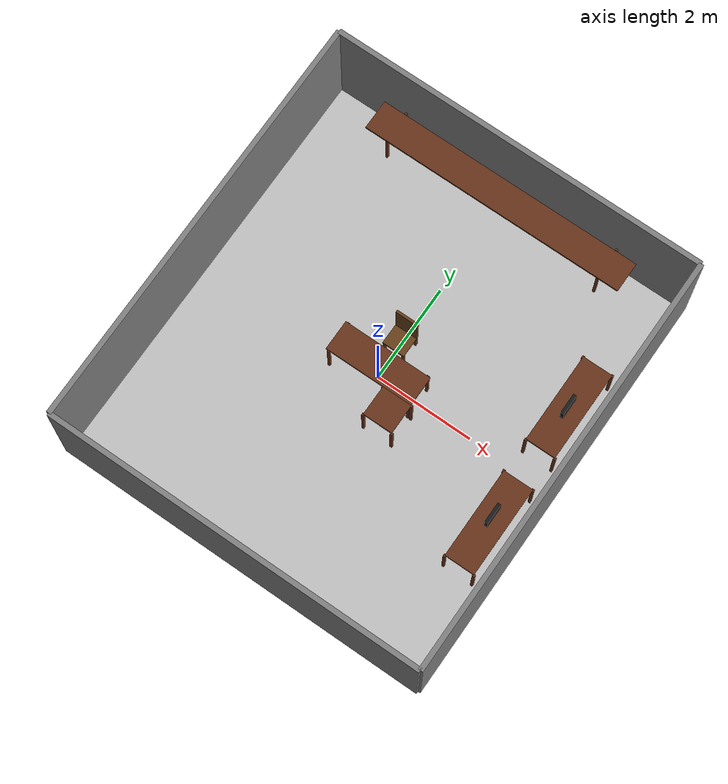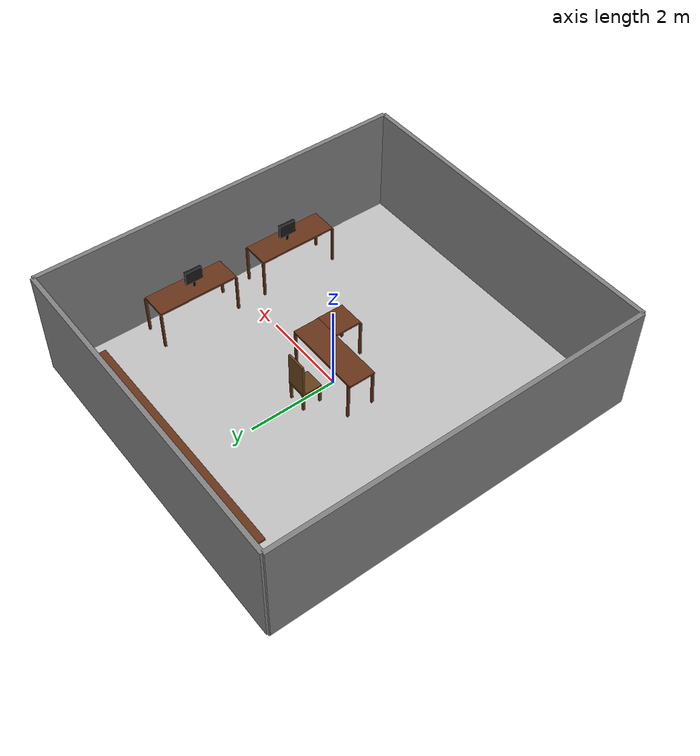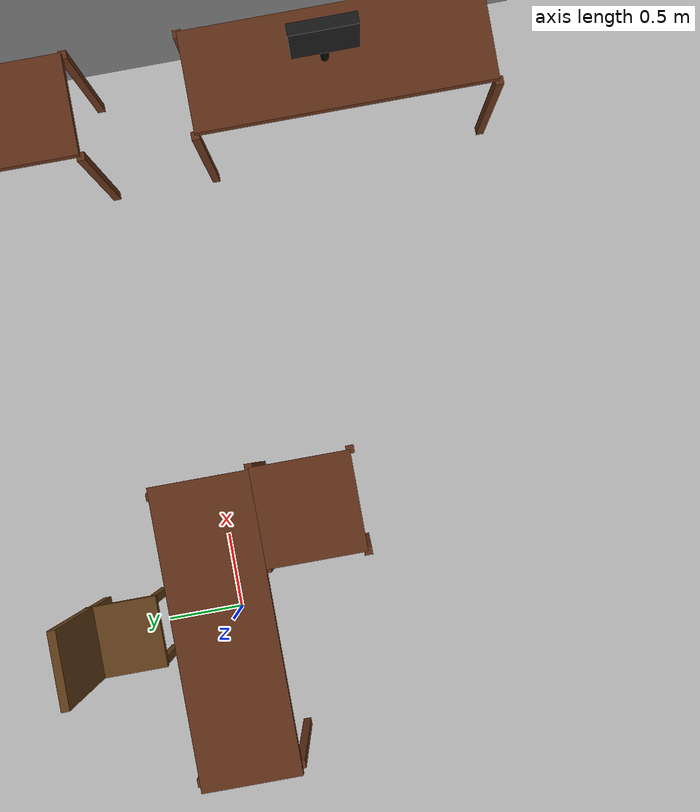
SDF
<?xml version="1.0" ?>
<sdf version="1.7">
  <world name="room_world">

    <!-- Floor -->
    <model name="floor">
      <static>true</static>
      <link name="floor_link">
        <pose>0 0 -0.05 0 0 0</pose>
        <collision name="floor_collision">
          <geometry>
            <box><size>7.62 8.53 0.1</size></box>
          </geometry>
        </collision>
        <visual name="floor_visual">
          <geometry>
            <box><size>7.62 8.53 0.1</size></box>
          </geometry>
          <material>
            <ambient>0.75 0.75 0.75 1</ambient>
            <diffuse>0.75 0.75 0.75 1</diffuse>
          </material>
        </visual>
      </link>
    </model>

    <!-- Wall 1 -->
    <model name="wall1">
      <static>true</static>
      <link name="wall1_link">
        <pose>-3.81 0 1.25 0 0 0</pose>
        <collision name="wall1_collision">
          <geometry>
            <box><size>0.1 8.53 2.5</size></box>
          </geometry>
        </collision>
        <visual name="wall1_visual">
          <geometry>
            <box><size>0.1 8.53 2.5</size></box>
          </geometry>
          <material>
            <ambient>0.5 0.5 0.5 1</ambient>
            <diffuse>0.5 0.5 0.5 1</diffuse>
          </material>
        </visual>
      </link>
    </model>

    <!-- Wall 2 -->
    <model name="wall2">
      <static>true</static>
      <link name="wall2_link">
        <pose>3.81 0 1.25 0 0 0</pose>
        <collision name="wall2_collision">
          <geometry>
            <box><size>0.1 8.53 2.5</size></box>
          </geometry>
        </collision>
        <visual name="wall2_visual">
          <geometry>
            <box><size>0.1 8.53 2.5</size></box>
          </geometry>
          <material>
            <ambient>0.5 0.5 0.5 1</ambient>
            <diffuse>0.5 0.5 0.5 1</diffuse>
          </material>
        </visual>
      </link>
    </model>

    <!-- Wall 3 -->
    <model name="wall3">
      <static>true</static>
      <link name="wall3_link">
        <pose>0 -4.265 1.25 0 0 0</pose>
        <collision name="wall3_collision">
          <geometry>
            <box><size>7.62 0.1 2.5</size></box>
          </geometry>
        </collision>
        <visual name="wall3_visual">
          <geometry>
            <box><size>7.62 0.1 2.5</size></box>
          </geometry>
          <material>
            <ambient>0.5 0.5 0.5 1</ambient>
            <diffuse>0.5 0.5 0.5 1</diffuse>
          </material>
        </visual>
      </link>
    </model>

    <!-- Wall 4 -->
    <model name="wall4">
      <static>true</static>
      <link name="wall4_link">
        <pose>0 4.265 1.25 0 0 0</pose>
        <collision name="wall4_collision">
          <geometry>
            <box><size>7.62 0.1 2.5</size></box>
          </geometry>
        </collision>
        <visual name="wall4_visual">
          <geometry>
            <box><size>7.62 0.1 2.5</size></box>
          </geometry>
          <material>
            <ambient>0.5 0.5 0.5 1</ambient>
            <diffuse>0.5 0.5 0.5 1</diffuse>
          </material>
        </visual>
      </link>
    </model>

    <!-- Table (brown): 6ft x 2ft x 3ft -->
    <model name="table">
      <static>true</static>

      <!-- Tabletop -->
      <link name="table_top_link">
        <pose>0 0 0.91 0 0 0</pose>
        <collision name="table_top_collision">
          <geometry>
            <box><size>1.83 0.61 0.05</size></box>
          </geometry>
        </collision>
        <visual name="table_top_visual">
          <geometry>
            <box><size>1.83 0.61 0.05</size></box>
          </geometry>
          <material>
            <ambient>0.4 0.2 0.1 1</ambient>
            <diffuse>0.4 0.2 0.1 1</diffuse>
          </material>
        </visual>
      </link>

      <!-- Table Legs (brown) -->
      <link name="leg1">
        <pose>-0.86 -0.30 0.45 0 0 0</pose>
        <collision name="leg1_collision">
          <geometry><box><size>0.05 0.05 0.9</size></box></geometry>
        </collision>
        <visual name="leg1_visual">
          <geometry><box><size>0.05 0.05 0.9</size></box></geometry>
          <material>
            <ambient>0.4 0.2 0.1 1</ambient>
            <diffuse>0.4 0.2 0.1 1</diffuse>
          </material>
        </visual>
      </link>

      <link name="leg2">
        <pose>0.86 -0.30 0.45 0 0 0</pose>
        <collision name="leg2_collision">
          <geometry><box><size>0.05 0.05 0.9</size></box></geometry>
        </collision>
        <visual name="leg2_visual">
          <geometry><box><size>0.05 0.05 0.9</size></box></geometry>
          <material>
            <ambient>0.4 0.2 0.1 1</ambient>
            <diffuse>0.4 0.2 0.1 1</diffuse>
          </material>
        </visual>
      </link>

      <link name="leg3">
        <pose>-0.86 0.30 0.45 0 0 0</pose>
        <collision name="leg3_collision">
          <geometry><box><size>0.05 0.05 0.9</size></box></geometry>
        </collision>
        <visual name="leg3_visual">
          <geometry><box><size>0.05 0.05 0.9</size></box></geometry>
          <material>
            <ambient>0.4 0.2 0.1 1</ambient>
            <diffuse>0.4 0.2 0.1 1</diffuse>
          </material>
        </visual>
      </link>

      <link name="leg4">
        <pose>0.86 0.30 0.45 0 0 0</pose>
        <collision name="leg4_collision">
          <geometry><box><size>0.05 0.05 0.9</size></box></geometry>
        </collision>
        <visual name="leg4_visual">
          <geometry><box><size>0.05 0.05 0.9</size></box></geometry>
          <material>
            <ambient>0.4 0.2 0.1 1</ambient>
            <diffuse>0.4 0.2 0.1 1</diffuse>
          </material>
        </visual>
      </link>

    </model>

    <!-- Square Table Extension for L-shape -->
    <model name="table2">
      <static>true</static>

    <!-- Tabletop -->
      <link name="table_top_link">
        <pose>0.62 -0.61 0.91 0 0 0</pose>
        <collision name="table_top_collision">
          <geometry>
            <box><size>0.61 0.61 0.05</size></box>
          </geometry>
        </collision>
        <visual name="table_top_visual">
          <geometry>
            <box><size>0.61 0.61 0.05</size></box>
          </geometry>
          <material>
            <ambient>0.4 0.2 0.1 1</ambient>
            <diffuse>0.4 0.2 0.1 1</diffuse>
          </material>
        </visual>
      </link>

      <!-- Table Legs -->
      <link name="leg1">
        <pose>0.315 -0.915 0.45 0 0 0</pose>
        <collision name="leg1_collision">
          <geometry><box><size>0.05 0.05 0.9</size></box></geometry>
        </collision>
        <visual name="leg1_visual">
          <geometry><box><size>0.05 0.05 0.9</size></box></geometry>
          <material>
            <ambient>0.4 0.2 0.1 1</ambient>
            <diffuse>0.4 0.2 0.1 1</diffuse>
          </material>
        </visual>
      </link>

      <link name="leg2">
        <pose>0.925 -0.915 0.45 0 0 0</pose>
        <collision name="leg2_collision">
          <geometry><box><size>0.05 0.05 0.9</size></box></geometry>
        </collision>
        <visual name="leg2_visual">
          <geometry><box><size>0.05 0.05 0.9</size></box></geometry>
          <material>
            <ambient>0.4 0.2 0.1 1</ambient>
            <diffuse>0.4 0.2 0.1 1</diffuse>
          </material>
        </visual>
      </link>

      <link name="leg3">
        <pose>0.315 -0.305 0.45 0 0 0</pose>
        <collision name="leg3_collision">
          <geometry><box><size>0.05 0.05 0.9</size></box></geometry>
        </collision>
        <visual name="leg3_visual">
          <geometry><box><size>0.05 0.05 0.9</size></box></geometry>
          <material>
            <ambient>0.4 0.2 0.1 1</ambient>
            <diffuse>0.4 0.2 0.1 1</diffuse>
          </material>
        </visual>
      </link>

      <link name="leg4">
        <pose>0.925 -0.305 0.45 0 0 0</pose>
        <collision name="leg4_collision">
          <geometry><box><size>0.05 0.05 0.9</size></box></geometry>
        </collision>
        <visual name="leg4_visual">
          <geometry><box><size>0.05 0.05 0.9</size></box></geometry>
          <material>
            <ambient>0.4 0.2 0.1 1</ambient>
            <diffuse>0.4 0.2 0.1 1</diffuse>
          </material>
        </visual>
      </link>

    </model>

    <!-- looonnngg table -->
    <model name="table_left_triple">
      <static>true</static>

      <!-- Tabletop -->
      <link name="table_left_triple_top">
        <pose>0 3.85 0.91 0 0 0</pose>
        <collision name="table_left_triple_top_collision">
          <geometry><box><size>5.49 0.61 0.05</size></box></geometry>
        </collision>
        <visual name="table_left_triple_top_visual">
          <geometry><box><size>5.49 0.61 0.05</size></box></geometry>
          <material>
            <ambient>0.4 0.2 0.1 1</ambient>
            <diffuse>0.4 0.2 0.1 1</diffuse>
          </material>
        </visual>
      </link>

      <!-- Table Legs -->
      <link name="table_left_triple_leg1">
        <pose>-2.3 4.2 0.45 0 0 0</pose> <!-- Adjusted to the left -->
        <collision name="table_left_triple_leg1_collision">
          <geometry><box><size>0.05 0.05 0.9</size></box></geometry>
        </collision>
        <visual name="table_left_triple_leg1_visual">
          <geometry><box><size>0.05 0.05 0.9</size></box></geometry>
          <material>
            <ambient>0.4 0.2 0.1 1</ambient>
            <diffuse>0.4 0.2 0.1 1</diffuse>
          </material>
        </visual>
      </link>

      <link name="table_left_triple_leg2">
        <pose>-2.3 3.6 0.45 0 0 0</pose> <!-- Adjusted to the left -->
        <collision name="table_left_triple_leg2_collision">
          <geometry><box><size>0.05 0.05 0.9</size></box></geometry>
        </collision>
        <visual name="table_left_triple_leg2_visual">
          <geometry><box><size>0.05 0.05 0.9</size></box></geometry>
          <material>
            <ambient>0.4 0.2 0.1 1</ambient>
            <diffuse>0.4 0.2 0.1 1</diffuse>
          </material>
        </visual>
      </link>

      <link name="table_left_triple_leg3">
        <pose>2.3 4.2 0.45 0 0 0</pose> <!-- Adjusted to the left -->
        <collision name="table_left_triple_leg3_collision">
          <geometry><box><size>0.05 0.05 0.9</size></box></geometry>
        </collision>
        <visual name="table_left_triple_leg3_visual">
          <geometry><box><size>0.05 0.05 0.9</size></box></geometry>
          <material>
            <ambient>0.4 0.2 0.1 1</ambient>
            <diffuse>0.4 0.2 0.1 1</diffuse>
          </material>
        </visual>
      </link>

      <link name="table_left_triple_leg4">
        <pose>2.3 3.6 0.45 0 0 0</pose> <!-- Adjusted to the left -->
        <collision name="table_left_triple_leg4_collision">
          <geometry><box><size>0.05 0.05 0.9</size></box></geometry>
        </collision>
        <visual name="table_left_triple_leg4_visual">
          <geometry><box><size>0.05 0.05 0.9</size></box></geometry>
          <material>
            <ambient>0.4 0.2 0.1 1</ambient>
            <diffuse>0.4 0.2 0.1 1</diffuse>
          </material>
        </visual>
      </link>
    </model>

    <!-- Chair on the left side of the table -->
    <model name="chair1">
    <!-- Chair placed on the left side of the table, rotated to face the tabl-->
      <pose>0 0.7 0 0 0 3.1416</pose>

      <static>true</static>
      <link name="chair_link">

        <!-- Seat -->
        <visual name="seat_visual">
          <pose>0 0 0.45 0 0 0</pose>
          <geometry>
            <box><size>0.46 0.46 0.05</size></box>
          </geometry>
          <material>
            <ambient>0.4 0.25 0.1 1</ambient>
            <diffuse>0.4 0.25 0.1 1</diffuse>
          </material>
        </visual>
        <collision name="seat_collision">
          <pose>0 0 0.45 0 0 0</pose>
          <geometry>
            <box><size>0.46 0.46 0.05</size></box>
          </geometry>
        </collision>

        <!-- Backrest -->
        <visual name="backrest_visual">
          <pose>0 -0.2 0.85 0 0 0</pose>
          <geometry>
            <box><size>0.46 0.05 0.8</size></box>
          </geometry>
          <material>
            <ambient>0.4 0.25 0.1 1</ambient>
            <diffuse>0.4 0.25 0.1 1</diffuse>
          </material>
        </visual>
        <collision name="backrest_collision">
          <pose>0 -0.2 0.85 0 0 0</pose>
          <geometry>
            <box><size>0.46 0.05 0.8</size></box>
          </geometry>
        </collision>

        <!-- Legs -->
        <!-- Front Left -->
        <visual name="leg_fl_visual">
          <pose>0.2 0.2 0.225 0 0 0</pose>
          <geometry>
            <box><size>0.05 0.05 0.45</size></box>
          </geometry>
          <material>
            <ambient>0.4 0.25 0.1 1</ambient>
            <diffuse>0.4 0.25 0.1 1</diffuse>
          </material>
        </visual>
        <collision name="leg_fl_collision">
          <pose>0.2 0.2 0.225 0 0 0</pose>
          <geometry>
            <box><size>0.05 0.05 0.45</size></box>
          </geometry>
        </collision>

        <!-- Front Right -->
        <visual name="leg_fr_visual">
          <pose>-0.2 0.2 0.225 0 0 0</pose>
          <geometry>
            <box><size>0.05 0.05 0.45</size></box>
          </geometry>
          <material>
            <ambient>0.4 0.25 0.1 1</ambient>
            <diffuse>0.4 0.25 0.1 1</diffuse>
          </material>
        </visual>
        <collision name="leg_fr_collision">
          <pose>-0.2 0.2 0.225 0 0 0</pose>
          <geometry>
            <box><size>0.05 0.05 0.45</size></box>
          </geometry>
        </collision>

        <!-- Back Left -->
        <visual name="leg_bl_visual">
          <pose>0.2 -0.2 0.225 0 0 0</pose>
          <geometry>
            <box><size>0.05 0.05 0.45</size></box>
          </geometry>
          <material>
            <ambient>0.4 0.25 0.1 1</ambient>
            <diffuse>0.4 0.25 0.1 1</diffuse>
          </material>
        </visual>
        <collision name="leg_bl_collision">
          <pose>0.2 -0.2 0.225 0 0 0</pose>
          <geometry>
            <box><size>0.05 0.05 0.45</size></box>
          </geometry>
        </collision>

        <!-- Back Right -->
        <visual name="leg_br_visual">
          <pose>-0.2 -0.2 0.225 0 0 0</pose>
          <geometry>
            <box><size>0.05 0.05 0.45</size></box>
          </geometry>
          <material>
            <ambient>0.4 0.25 0.1 1</ambient>
            <diffuse>0.4 0.25 0.1 1</diffuse>
          </material>
        </visual>
        <collision name="leg_br_collision">
          <pose>-0.2 -0.2 0.225 0 0 0</pose>
          <geometry>
            <box><size>0.05 0.05 0.45</size></box>
          </geometry>
        </collision>
      </link>
    </model>
    <model name="table_back1">
      <static>true</static>

      <!-- Tabletop -->
      <link name="table_back1_top">
        <pose>3.22 -1.26 0.91 0 0 1.5708</pose>
        <collision name="top_collision">
          <geometry><box><size>1.83 0.61 0.05</size></box></geometry>
        </collision>
        <visual name="top_visual">
          <geometry><box><size>1.83 0.61 0.05</size></box></geometry>
          <material>
            <ambient>0.4 0.2 0.1 1</ambient>
            <diffuse>0.4 0.2 0.1 1</diffuse>
          </material>
        </visual>
      </link>

      <!-- Table Legs -->
      <link name="leg1">
        <pose>3.525 -2.175 0.45 0 0 1.5708</pose>
        <collision name="leg1_collision">
          <geometry><box><size>0.05 0.05 0.9</size></box></geometry>
        </collision>
        <visual name="leg1_visual">
          <geometry><box><size>0.05 0.05 0.9</size></box></geometry>
          <material>
            <ambient>0.4 0.2 0.1 1</ambient>
            <diffuse>0.4 0.2 0.1 1</diffuse>
          </material>
        </visual>
      </link>

      <link name="leg2">
        <pose>2.915 -2.175 0.45 0 0 1.5708</pose>
        <collision name="leg2_collision">
          <geometry><box><size>0.05 0.05 0.9</size></box></geometry>
        </collision>
        <visual name="leg2_visual">
          <geometry><box><size>0.05 0.05 0.9</size></box></geometry>
          <material>
            <ambient>0.4 0.2 0.1 1</ambient>
            <diffuse>0.4 0.2 0.1 1</diffuse>
          </material>
        </visual>
      </link>

      <link name="leg3">
        <pose>3.525 -0.345 0.45 0 0 1.5708</pose>
        <collision name="leg3_collision">
          <geometry><box><size>0.05 0.05 0.9</size></box></geometry>
        </collision>
        <visual name="leg3_visual">
          <geometry><box><size>0.05 0.05 0.9</size></box></geometry>
          <material>
            <ambient>0.4 0.2 0.1 1</ambient>
            <diffuse>0.4 0.2 0.1 1</diffuse>
          </material>
        </visual>
      </link>

      <link name="leg4">
        <pose>2.915 -0.345 0.45 0 0 1.5708</pose>
        <collision name="leg4_collision">
          <geometry><box><size>0.05 0.05 0.9</size></box></geometry>
        </collision>
        <visual name="leg4_visual">
          <geometry><box><size>0.05 0.05 0.9</size></box></geometry>
          <material>
            <ambient>0.4 0.2 0.1 1</ambient>
            <diffuse>0.4 0.2 0.1 1</diffuse>
          </material>
        </visual>
      </link>
    </model>

    <model name="table_back2">
      <static>true</static>

      <!-- Tabletop -->
      <link name="table_back2_top">
        <pose>3.22 1.26 0.91 0 0 1.5708</pose>
        <collision name="table_back2_top_collision">
          <geometry><box><size>1.83 0.61 0.05</size></box></geometry>
        </collision>
        <visual name="table_back2_top_visual">
          <geometry><box><size>1.83 0.61 0.05</size></box></geometry>
          <material>
            <ambient>0.4 0.2 0.1 1</ambient>
            <diffuse>0.4 0.2 0.1 1</diffuse>
          </material>
        </visual>
      </link>

      <!-- Leg 1 -->
      <link name="table_back2_leg1">
        <pose>3.525 2.175 0.45 0 0 1.5708</pose>
        <collision name="table_back2_leg1_collision">
          <geometry><box><size>0.05 0.05 0.9</size></box></geometry>
        </collision>
        <visual name="table_back2_leg1_visual">
          <geometry><box><size>0.05 0.05 0.9</size></box></geometry>
          <material>
            <ambient>0.4 0.2 0.1 1</ambient>
            <diffuse>0.4 0.2 0.1 1</diffuse>
          </material>
        </visual>
      </link>

      <!-- Leg 2 -->
      <link name="table_back2_leg2">
        <pose>2.915 2.175 0.45 0 0 1.5708</pose>
        <collision name="table_back2_leg2_collision">
          <geometry><box><size>0.05 0.05 0.9</size></box></geometry>
        </collision>
        <visual name="table_back2_leg2_visual">
          <geometry><box><size>0.05 0.05 0.9</size></box></geometry>
          <material>
            <ambient>0.4 0.2 0.1 1</ambient>
            <diffuse>0.4 0.2 0.1 1</diffuse>
          </material>
        </visual>
      </link>

      <!-- Leg 3 -->
      <link name="table_back2_leg3">
        <pose>3.525 0.345 0.45 0 0 1.5708</pose>
        <collision name="table_back2_leg3_collision">
          <geometry><box><size>0.05 0.05 0.9</size></box></geometry>
        </collision>
        <visual name="table_back2_leg3_visual">
          <geometry><box><size>0.05 0.05 0.9</size></box></geometry>
          <material>
            <ambient>0.4 0.2 0.1 1</ambient>
            <diffuse>0.4 0.2 0.1 1</diffuse>
          </material>
        </visual>
      </link>

      <!-- Leg 4 -->
      <link name="table_back2_leg4">
        <pose>2.915 0.345 0.45 0 0 1.5708</pose>
        <collision name="table_back2_leg4_collision">
          <geometry><box><size>0.05 0.05 0.9</size></box></geometry>
        </collision>
        <visual name="table_back2_leg4_visual">
          <geometry><box><size>0.05 0.05 0.9</size></box></geometry>
          <material>
            <ambient>0.4 0.2 0.1 1</ambient>
            <diffuse>0.4 0.2 0.1 1</diffuse>
          </material>
        </visual>
      </link>
    </model>

    <model name="computer_on_table_back1">
      <static>true</static>

      <!-- Monitor -->
      <link name="monitor2">
        <pose>3.22 1.18 1.23 0 0 1.5708</pose>
        <collision name="monitor2_collision">
          <geometry>
            <box><size>0.4 0.07 0.3</size></box>
          </geometry>
        </collision>
        <visual name="monitor2_visual">
          <geometry>
            <box><size>0.4 0.07 0.3</size></box>
          </geometry>
          <material>
            <ambient>0.1 0.1 0.1 1</ambient>
            <diffuse>0.1 0.1 0.1 1</diffuse>
          </material>
        </visual>
      </link>

      <!-- Mounting Pole -->
      <link name="monitor2_pole">
        <pose>3.22 1.18 1.05 0 0 0</pose>
        <collision name="monitor2_pole_collision">
          <geometry>
            <cylinder>
              <radius>0.025</radius>
              <length>0.35</length>
            </cylinder>
          </geometry>
        </collision>
        <visual name="monitor2_pole_visual">
          <geometry>
            <cylinder>
              <radius>0.025</radius>
              <length>0.35</length>
            </cylinder>
          </geometry>
          <material>
            <ambient>0.02 0.02 0.02 1</ambient>
            <diffuse>0.02 0.02 0.02 1</diffuse>
          </material>
        </visual>
     </link>

     <!-- Square Base -->
     <link name="monitor2_base">
       <pose>3.22 1.18 0.92 0 0 0</pose> <!-- Raised slightly for visibility -->
       <collision name="monitor2_base_collision">
         <geometry>
           <box><size>0.2 0.2 0.02</size></box>
         </geometry>
       </collision>
       <visual name="monitor2_base_visual">
         <geometry>
           <box><size>0.2 0.2 0.02</size></box>
         </geometry>
         <material>
           <ambient>0.2 0.2 0.2 1</ambient>
           <diffuse>0.2 0.2 0.2 1</diffuse>
         </material>
       </visual>
     </link>
   </model>

   <model name="computer_on_table_back2">
     <static>true</static>

     <!-- Monitor -->
     <link name="monitor">
       <pose>3.22 -1.18 1.23 0 0 1.5708</pose> <!-- Moved forward along Y -->
       <collision name="monitor_collision">
         <geometry>
           <box><size>0.4 0.07 0.3</size></box>
         </geometry>
       </collision>
       <visual name="monitor_visual">
         <geometry>
           <box><size>0.4 0.07 0.3</size></box>
         </geometry>
         <material>
           <ambient>0.1 0.1 0.1 1</ambient>
           <diffuse>0.1 0.1 0.1 1</diffuse>
         </material>
       </visual>
     </link>

     <!-- Mounting Pole -->
     <link name="monitor_pole">
       <pose>3.22 -1.18 1.05 0 0 0</pose> <!-- Below the monitor -->
       <collision name="pole_collision">
         <geometry>
           <cylinder>
             <radius>0.025</radius>
             <length>0.35</length>
           </cylinder>
         </geometry>
       </collision>
       <visual name="pole_visual">
         <geometry>
           <cylinder>
             <radius>0.025</radius>
             <length>0.35</length>
           </cylinder>
         </geometry>
         <material>
           <ambient>0.02 0.02 0.02 1</ambient>
           <diffuse>0.02 0.02 0.02 1</diffuse>
         </material>
       </visual>
     </link>

     <!-- Square Base -->
     <link name="monitor_base">
       <pose>3.22 -1.18 0.91 0 0 0</pose> <!-- On the tabletop -->
       <collision name="base_collision">
         <geometry>
           <box><size>0.2 0.2 0.02</size></box>
         </geometry>
       </collision>
       <visual name="base_visual">
         <geometry>
           <box><size>0.2 0.2 0.02</size></box>
         </geometry>
         <material>
           <ambient>0.1 0.1 0.1 1</ambient>
           <diffuse>0.1 0.1 0.1 1</diffuse>
         </material>
       </visual>
     </link>
   </model>

  </world>
</sdf>
